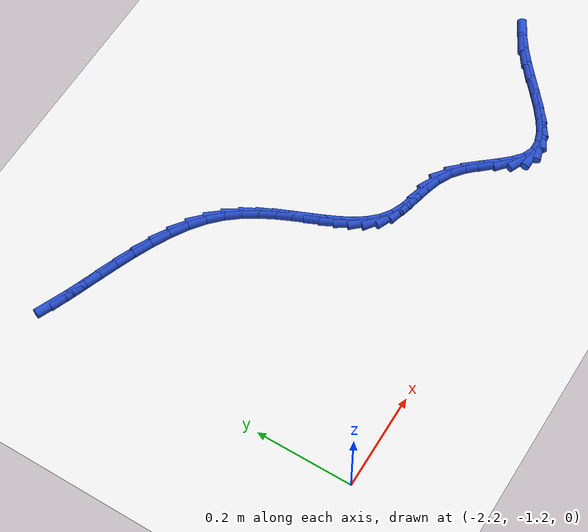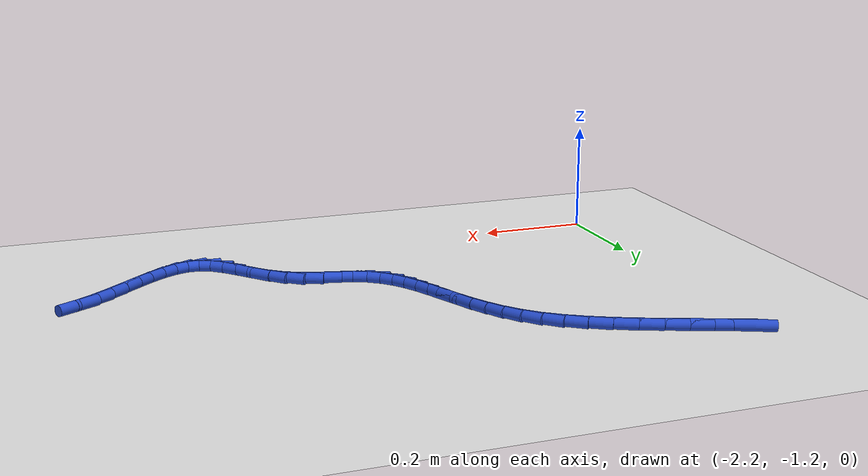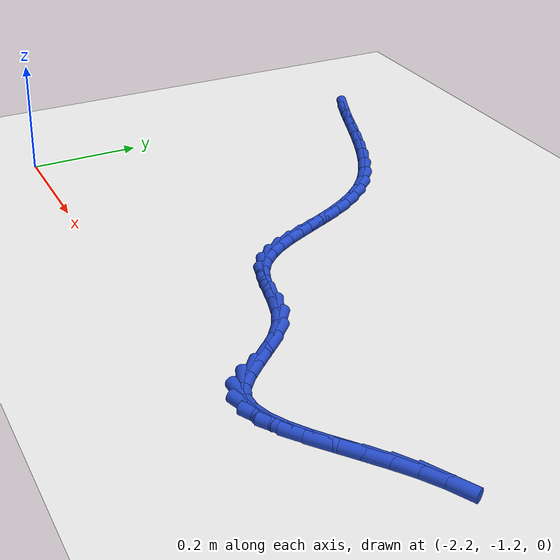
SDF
<sdf version="1.6">
 <world name="default">
  <model name="ground_plane">
   <static>1</static>
   <link name="link">
    <collision name="collision">
     <geometry><plane><normal>0 0 1</normal><size>100 100</size></plane></geometry>
     <surface><friction><ode><mu>100</mu><mu2>50</mu2></ode></friction></surface>
    </collision>
    <visual name="visual">
     <cast_shadows>0</cast_shadows>
     <geometry><plane><normal>0 0 1</normal><size>100 100</size></plane></geometry>
     <material>
      <script><uri>file://media/materials/scripts/gazebo.material</uri><name>Gazebo/WhiteGlow</name></script>
     </material>
    </visual>
   </link>
  </model>
  <model name="line">
   <link name="link_148">
    <pose>-2.1793640589691528 -0.5325400143970584 0.01 0 1.57 -0.4144865762685971</pose>
    <collision name="collision">
     <geometry><cylinder><radius>0.01</radius><length>0.08</length></cylinder></geometry>
    </collision>
    <visual name="visual">
     <material>
      <script><name>Gazebo/Blue</name><uri>file://media/materials/scripts/gazebo.material</uri></script>
     </material>
     <geometry><cylinder><radius>0.01</radius><length>0.08</length></cylinder></geometry>
    </visual>
   </link>
   <link name="link_149">
    <pose>-2.1520619958730403 -0.5445522606889542 0.01 0 1.57 -0.37567643426173364</pose>
    <collision name="collision">
     <geometry><cylinder><radius>0.01</radius><length>0.08</length></cylinder></geometry>
    </collision>
    <visual name="visual">
     <material>
      <script><name>Gazebo/Blue</name><uri>file://media/materials/scripts/gazebo.material</uri></script>
     </material>
     <geometry><cylinder><radius>0.01</radius><length>0.08</length></cylinder></geometry>
    </visual>
   </link>
   <link name="link_150">
    <pose>-2.12054145340325 -0.5569842156347203 0.01 0 1.57 -0.36205737712238323</pose>
    <collision name="collision">
     <geometry><cylinder><radius>0.01</radius><length>0.08</length></cylinder></geometry>
    </collision>
    <visual name="visual">
     <material>
      <script><name>Gazebo/Blue</name><uri>file://media/materials/scripts/gazebo.material</uri></script>
     </material>
     <geometry><cylinder><radius>0.01</radius><length>0.08</length></cylinder></geometry>
    </visual>
   </link>
   <link name="link_151">
    <pose>-2.0859157299118234 -0.5700988309756856 0.01 0 1.57 -0.3666154285389049</pose>
    <collision name="collision">
     <geometry><cylinder><radius>0.01</radius><length>0.08</length></cylinder></geometry>
    </collision>
    <visual name="visual">
     <material>
      <script><name>Gazebo/Blue</name><uri>file://media/materials/scripts/gazebo.material</uri></script>
     </material>
     <geometry><cylinder><radius>0.01</radius><length>0.08</length></cylinder></geometry>
    </visual>
   </link>
   <link name="link_152">
    <pose>-2.049298123750798 -0.5841590584531786 0.01 0 1.57 -0.3867056596858089</pose>
    <collision name="collision">
     <geometry><cylinder><radius>0.01</radius><length>0.08</length></cylinder></geometry>
    </collision>
    <visual name="visual">
     <material>
      <script><name>Gazebo/Blue</name><uri>file://media/materials/scripts/gazebo.material</uri></script>
     </material>
     <geometry><cylinder><radius>0.01</radius><length>0.08</length></cylinder></geometry>
    </visual>
   </link>
   <link name="link_153">
    <pose>-2.0118019332722157 -0.5994278498085283 0.01 0 1.57 -0.42224319597786986</pose>
    <collision name="collision">
     <geometry><cylinder><radius>0.01</radius><length>0.08</length></cylinder></geometry>
    </collision>
    <visual name="visual">
     <material>
      <script><name>Gazebo/Blue</name><uri>file://media/materials/scripts/gazebo.material</uri></script>
     </material>
     <geometry><cylinder><radius>0.01</radius><length>0.08</length></cylinder></geometry>
    </visual>
   </link>
   <link name="link_154">
    <pose>-1.9745404568281135 -0.6161681567830625 0.01 0 1.57 -0.4751206944851576</pose>
    <collision name="collision">
     <geometry><cylinder><radius>0.01</radius><length>0.08</length></cylinder></geometry>
    </collision>
    <visual name="visual">
     <material>
      <script><name>Gazebo/Blue</name><uri>file://media/materials/scripts/gazebo.material</uri></script>
     </material>
     <geometry><cylinder><radius>0.01</radius><length>0.08</length></cylinder></geometry>
    </visual>
   </link>
   <link name="link_155">
    <pose>-1.9386269927705326 -0.6346429311181108 0.01 0 1.57 -0.5491849329509276</pose>
    <collision name="collision">
     <geometry><cylinder><radius>0.01</radius><length>0.08</length></cylinder></geometry>
    </collision>
    <visual name="visual">
     <material>
      <script><name>Gazebo/Blue</name><uri>file://media/materials/scripts/gazebo.material</uri></script>
     </material>
     <geometry><cylinder><radius>0.01</radius><length>0.08</length></cylinder></geometry>
    </visual>
   </link>
   <link name="link_156">
    <pose>-1.9051748394515124 -0.6551151245550014 0.01 0 1.57 -0.6504139983077745</pose>
    <collision name="collision">
     <geometry><cylinder><radius>0.01</radius><length>0.08</length></cylinder></geometry>
    </collision>
    <visual name="visual">
     <material>
      <script><name>Gazebo/Blue</name><uri>file://media/materials/scripts/gazebo.material</uri></script>
     </material>
     <geometry><cylinder><radius>0.01</radius><length>0.08</length></cylinder></geometry>
    </visual>
   </link>
   <link name="link_157">
    <pose>-1.875297295223092 -0.677847688835063 0.01 0 1.57 -0.7788954174469972</pose>
    <collision name="collision">
     <geometry><cylinder><radius>0.01</radius><length>0.08</length></cylinder></geometry>
    </collision>
    <visual name="visual">
     <material>
      <script><name>Gazebo/Blue</name><uri>file://media/materials/scripts/gazebo.material</uri></script>
     </material>
     <geometry><cylinder><radius>0.01</radius><length>0.08</length></cylinder></geometry>
    </visual>
   </link>
   <link name="link_158">
    <pose>-1.8498363940965947 -0.7029795931634661 0.01 0 1.57 -0.9020361896211507</pose>
    <collision name="collision">
     <geometry><cylinder><radius>0.01</radius><length>0.08</length></cylinder></geometry>
    </collision>
    <visual name="visual">
     <material>
      <script><name>Gazebo/Blue</name><uri>file://media/materials/scripts/gazebo.material</uri></script>
     </material>
     <geometry><cylinder><radius>0.01</radius><length>0.08</length></cylinder></geometry>
    </visual>
   </link>
   <link name="link_159">
    <pose>-1.8284118261721594 -0.7300911291920905 0.01 0 1.57 -1.0048836079570873</pose>
    <collision name="collision">
     <geometry><cylinder><radius>0.01</radius><length>0.08</length></cylinder></geometry>
    </collision>
    <visual name="visual">
     <material>
      <script><name>Gazebo/Blue</name><uri>file://media/materials/scripts/gazebo.material</uri></script>
     </material>
     <geometry><cylinder><radius>0.01</radius><length>0.08</length></cylinder></geometry>
    </visual>
   </link>
   <link name="link_160">
    <pose>-1.8102991396083856 -0.7586052970150773 0.01 0 1.57 -1.0840982272256683</pose>
    <collision name="collision">
     <geometry><cylinder><radius>0.01</radius><length>0.08</length></cylinder></geometry>
    </collision>
    <visual name="visual">
     <material>
      <script><name>Gazebo/Blue</name><uri>file://media/materials/scripts/gazebo.material</uri></script>
     </material>
     <geometry><cylinder><radius>0.01</radius><length>0.08</length></cylinder></geometry>
    </visual>
   </link>
   <link name="link_161">
    <pose>-1.7947738634330908 -0.7879450879827601 0.01 0 1.57 -1.1382172243930269</pose>
    <collision name="collision">
     <geometry><cylinder><radius>0.01</radius><length>0.08</length></cylinder></geometry>
    </collision>
    <visual name="visual">
     <material>
      <script><name>Gazebo/Blue</name><uri>file://media/materials/scripts/gazebo.material</uri></script>
     </material>
     <geometry><cylinder><radius>0.01</radius><length>0.08</length></cylinder></geometry>
    </visual>
   </link>
   <link name="link_162">
    <pose>-1.7811115266740891 -0.8175334934454715 0.01 0 1.57 -1.1663705454068896</pose>
    <collision name="collision">
     <geometry><cylinder><radius>0.01</radius><length>0.08</length></cylinder></geometry>
    </collision>
    <visual name="visual">
     <material>
      <script><name>Gazebo/Blue</name><uri>file://media/materials/scripts/gazebo.material</uri></script>
     </material>
     <geometry><cylinder><radius>0.01</radius><length>0.08</length></cylinder></geometry>
    </visual>
   </link>
   <link name="link_163">
    <pose>-1.768587658359197 -0.8467935047535458 0.01 0 1.57 -1.167159713228206</pose>
    <collision name="collision">
     <geometry><cylinder><radius>0.01</radius><length>0.08</length></cylinder></geometry>
    </collision>
    <visual name="visual">
     <material>
      <script><name>Gazebo/Blue</name><uri>file://media/materials/scripts/gazebo.material</uri></script>
     </material>
     <geometry><cylinder><radius>0.01</radius><length>0.08</length></cylinder></geometry>
    </visual>
   </link>
   <link name="link_164">
    <pose>-1.7564777875162296 -0.8751481132573153 0.01 0 1.57 -1.1378428668057616</pose>
    <collision name="collision">
     <geometry><cylinder><radius>0.01</radius><length>0.08</length></cylinder></geometry>
    </collision>
    <visual name="visual">
     <material>
      <script><name>Gazebo/Blue</name><uri>file://media/materials/scripts/gazebo.material</uri></script>
     </material>
     <geometry><cylinder><radius>0.01</radius><length>0.08</length></cylinder></geometry>
    </visual>
   </link>
   <link name="link_165">
    <pose>-1.7440574431730032 -0.9020203103071137 0.01 0 1.57 -1.0739052201282937</pose>
    <collision name="collision">
     <geometry><cylinder><radius>0.01</radius><length>0.08</length></cylinder></geometry>
    </collision>
    <visual name="visual">
     <material>
      <script><name>Gazebo/Blue</name><uri>file://media/materials/scripts/gazebo.material</uri></script>
     </material>
     <geometry><cylinder><radius>0.01</radius><length>0.08</length></cylinder></geometry>
    </visual>
   </link>
   <link name="link_166">
    <pose>-1.730602154357333 -0.9268330872532742 0.01 0 1.57 -0.9694752348129569</pose>
    <collision name="collision">
     <geometry><cylinder><radius>0.01</radius><length>0.08</length></cylinder></geometry>
    </collision>
    <visual name="visual">
     <material>
      <script><name>Gazebo/Blue</name><uri>file://media/materials/scripts/gazebo.material</uri></script>
     </material>
     <geometry><cylinder><radius>0.01</radius><length>0.08</length></cylinder></geometry>
    </visual>
   </link>
   <link name="link_167">
    <pose>-1.715387450097034 -0.9490094354461303 0.01 0 1.57 -0.819870817228025</pose>
    <collision name="collision">
     <geometry><cylinder><radius>0.01</radius><length>0.08</length></cylinder></geometry>
    </collision>
    <visual name="visual">
     <material>
      <script><name>Gazebo/Blue</name><uri>file://media/materials/scripts/gazebo.material</uri></script>
     </material>
     <geometry><cylinder><radius>0.01</radius><length>0.08</length></cylinder></geometry>
    </visual>
   </link>
   <link name="link_168">
    <pose>-1.697688859419923 -0.9679723462360148 0.01 0 1.57 -0.6277760330394415</pose>
    <collision name="collision">
     <geometry><cylinder><radius>0.01</radius><length>0.08</length></cylinder></geometry>
    </collision>
    <visual name="visual">
     <material>
      <script><name>Gazebo/Blue</name><uri>file://media/materials/scripts/gazebo.material</uri></script>
     </material>
     <geometry><cylinder><radius>0.01</radius><length>0.08</length></cylinder></geometry>
    </visual>
   </link>
   <link name="link_169">
    <pose>-1.676781911353815 -0.9831448109732617 0.01 0 1.57 -0.4137884007350685</pose>
    <collision name="collision">
     <geometry><cylinder><radius>0.01</radius><length>0.08</length></cylinder></geometry>
    </collision>
    <visual name="visual">
     <material>
      <script><name>Gazebo/Blue</name><uri>file://media/materials/scripts/gazebo.material</uri></script>
     </material>
     <geometry><cylinder><radius>0.01</radius><length>0.08</length></cylinder></geometry>
    </visual>
   </link>
   <link name="link_170">
    <pose>-1.6520006665267981 -0.9940273137479101 0.01 0 1.57 -0.26703504556552277</pose>
    <collision name="collision">
     <geometry><cylinder><radius>0.01</radius><length>0.08</length></cylinder></geometry>
    </collision>
    <visual name="visual">
     <material>
      <script><name>Gazebo/Blue</name><uri>file://media/materials/scripts/gazebo.material</uri></script>
     </material>
     <geometry><cylinder><radius>0.01</radius><length>0.08</length></cylinder></geometry>
    </visual>
   </link>
   <link name="link_171">
    <pose>-1.6238863187022328 -1.0017185190073918 0.01 0 1.57 -0.23413051533846616</pose>
    <collision name="collision">
     <geometry><cylinder><radius>0.01</radius><length>0.08</length></cylinder></geometry>
    </collision>
    <visual name="visual">
     <material>
      <script><name>Gazebo/Blue</name><uri>file://media/materials/scripts/gazebo.material</uri></script>
     </material>
     <geometry><cylinder><radius>0.01</radius><length>0.08</length></cylinder></geometry>
    </visual>
   </link>
   <link name="link_172">
    <pose>-1.5941146320036035 -1.0088192022841957 0.01 0 1.57 -0.2993560280002451</pose>
    <collision name="collision">
     <geometry><cylinder><radius>0.01</radius><length>0.08</length></cylinder></geometry>
    </collision>
    <visual name="visual">
     <material>
      <script><name>Gazebo/Blue</name><uri>file://media/materials/scripts/gazebo.material</uri></script>
     </material>
     <geometry><cylinder><radius>0.01</radius><length>0.08</length></cylinder></geometry>
    </visual>
   </link>
   <link name="link_173">
    <pose>-1.5644053721127558 -1.0179883948443436 0.01 0 1.57 -0.46172240888423133</pose>
    <collision name="collision">
     <geometry><cylinder><radius>0.01</radius><length>0.08</length></cylinder></geometry>
    </collision>
    <visual name="visual">
     <material>
      <script><name>Gazebo/Blue</name><uri>file://media/materials/scripts/gazebo.material</uri></script>
     </material>
     <geometry><cylinder><radius>0.01</radius><length>0.08</length></cylinder></geometry>
    </visual>
   </link>
   <link name="link_174">
    <pose>-1.5364781787318855 -1.0318848492880168 0.01 0 1.57 -0.6788608159491873</pose>
    <collision name="collision">
     <geometry><cylinder><radius>0.01</radius><length>0.08</length></cylinder></geometry>
    </collision>
    <visual name="visual">
     <material>
      <script><name>Gazebo/Blue</name><uri>file://media/materials/scripts/gazebo.material</uri></script>
     </material>
     <geometry><cylinder><radius>0.01</radius><length>0.08</length></cylinder></geometry>
    </visual>
   </link>
   <link name="link_175">
    <pose>-1.5115304591574388 -1.0520121448918702 0.01 0 1.57 -0.8194855992472322</pose>
    <collision name="collision">
     <geometry><cylinder><radius>0.01</radius><length>0.08</length></cylinder></geometry>
    </collision>
    <visual name="visual">
     <material>
      <script><name>Gazebo/Blue</name><uri>file://media/materials/scripts/gazebo.material</uri></script>
     </material>
     <geometry><cylinder><radius>0.01</radius><length>0.08</length></cylinder></geometry>
    </visual>
   </link>
   <link name="link_176">
    <pose>-1.4890462632078827 -1.076083929801424 0.01 0 1.57 -0.8738727297638332</pose>
    <collision name="collision">
     <geometry><cylinder><radius>0.01</radius><length>0.08</length></cylinder></geometry>
    </collision>
    <visual name="visual">
     <material>
      <script><name>Gazebo/Blue</name><uri>file://media/materials/scripts/gazebo.material</uri></script>
     </material>
     <geometry><cylinder><radius>0.01</radius><length>0.08</length></cylinder></geometry>
    </visual>
   </link>
   <link name="link_177">
    <pose>-1.4681588015503124 -1.1010377991558205 0.01 0 1.57 -0.8462585563654265</pose>
    <collision name="collision">
     <geometry><cylinder><radius>0.01</radius><length>0.08</length></cylinder></geometry>
    </collision>
    <visual name="visual">
     <material>
      <script><name>Gazebo/Blue</name><uri>file://media/materials/scripts/gazebo.material</uri></script>
     </material>
     <geometry><cylinder><radius>0.01</radius><length>0.08</length></cylinder></geometry>
    </visual>
   </link>
   <link name="link_178">
    <pose>-1.4480012848518256 -1.1238113480942002 0.01 0 1.57 -0.7124669674881855</pose>
    <collision name="collision">
     <geometry><cylinder><radius>0.01</radius><length>0.08</length></cylinder></geometry>
    </collision>
    <visual name="visual">
     <material>
      <script><name>Gazebo/Blue</name><uri>file://media/materials/scripts/gazebo.material</uri></script>
     </material>
     <geometry><cylinder><radius>0.01</radius><length>0.08</length></cylinder></geometry>
    </visual>
   </link>
   <link name="link_179">
    <pose>-1.427706923779519 -1.141342171755704 0.01 0 1.57 -0.41135610201849643</pose>
    <collision name="collision">
     <geometry><cylinder><radius>0.01</radius><length>0.08</length></cylinder></geometry>
    </collision>
    <visual name="visual">
     <material>
      <script><name>Gazebo/Blue</name><uri>file://media/materials/scripts/gazebo.material</uri></script>
     </material>
     <geometry><cylinder><radius>0.01</radius><length>0.08</length></cylinder></geometry>
    </visual>
   </link>
   <link name="link_180">
    <pose>-1.4064222637481822 -1.1506274861799233 0.01 0 1.57 -0.0014499979643936257</pose>
    <collision name="collision">
     <geometry><cylinder><radius>0.01</radius><length>0.08</length></cylinder></geometry>
    </collision>
    <visual name="visual">
     <material>
      <script><name>Gazebo/Blue</name><uri>file://media/materials/scripts/gazebo.material</uri></script>
     </material>
     <geometry><cylinder><radius>0.01</radius><length>0.08</length></cylinder></geometry>
    </visual>
   </link>
   <link name="link_181">
    <pose>-1.3837402438320086 -1.1506603750856796 0.01 0 1.57 0.3151313856266616</pose>
    <collision name="collision">
     <geometry><cylinder><radius>0.01</radius><length>0.08</length></cylinder></geometry>
    </collision>
    <visual name="visual">
     <material>
      <script><name>Gazebo/Blue</name><uri>file://media/materials/scripts/gazebo.material</uri></script>
     </material>
     <geometry><cylinder><radius>0.01</radius><length>0.08</length></cylinder></geometry>
    </visual>
   </link>
   <link name="link_182">
    <pose>-1.3597951656106344 -1.142854404437891 0.01 0 1.57 0.5123896460178208</pose>
    <collision name="collision">
     <geometry><cylinder><radius>0.01</radius><length>0.08</length></cylinder></geometry>
    </collision>
    <visual name="visual">
     <material>
      <script><name>Gazebo/Blue</name><uri>file://media/materials/scripts/gazebo.material</uri></script>
     </material>
     <geometry><cylinder><radius>0.01</radius><length>0.08</length></cylinder></geometry>
    </visual>
   </link>
   <link name="link_183">
    <pose>-1.3347538809826351 -1.128768675712899 0.01 0 1.57 0.6267444277498889</pose>
    <collision name="collision">
     <geometry><cylinder><radius>0.01</radius><length>0.08</length></cylinder></geometry>
    </collision>
    <visual name="visual">
     <material>
      <script><name>Gazebo/Blue</name><uri>file://media/materials/scripts/gazebo.material</uri></script>
     </material>
     <geometry><cylinder><radius>0.01</radius><length>0.08</length></cylinder></geometry>
    </visual>
   </link>
   <link name="link_184">
    <pose>-1.3087832418465837 -1.1099622903870436 0.01 0 1.57 0.6878627333561039</pose>
    <collision name="collision">
     <geometry><cylinder><radius>0.01</radius><length>0.08</length></cylinder></geometry>
    </collision>
    <visual name="visual">
     <material>
      <script><name>Gazebo/Blue</name><uri>file://media/materials/scripts/gazebo.material</uri></script>
     </material>
     <geometry><cylinder><radius>0.01</radius><length>0.08</length></cylinder></geometry>
    </visual>
   </link>
   <link name="link_185">
    <pose>-1.2820501001010562 -1.0879943499366667 0.01 0 1.57 0.7116918791366031</pose>
    <collision name="collision">
     <geometry><cylinder><radius>0.01</radius><length>0.08</length></cylinder></geometry>
    </collision>
    <visual name="visual">
     <material>
      <script><name>Gazebo/Blue</name><uri>file://media/materials/scripts/gazebo.material</uri></script>
     </material>
     <geometry><cylinder><radius>0.01</radius><length>0.08</length></cylinder></geometry>
    </visual>
   </link>
   <link name="link_186">
    <pose>-1.2547213076446262 -1.0644239558381083 0.01 0 1.57 0.7049079047316948</pose>
    <collision name="collision">
     <geometry><cylinder><radius>0.01</radius><length>0.08</length></cylinder></geometry>
    </collision>
    <visual name="visual">
     <material>
      <script><name>Gazebo/Blue</name><uri>file://media/materials/scripts/gazebo.material</uri></script>
     </material>
     <geometry><cylinder><radius>0.01</radius><length>0.08</length></cylinder></geometry>
    </visual>
   </link>
   <link name="link_187">
    <pose>-1.2269637163758684 -1.0408102095677092 0.01 0 1.57 0.6677903336285783</pose>
    <collision name="collision">
     <geometry><cylinder><radius>0.01</radius><length>0.08</length></cylinder></geometry>
    </collision>
    <visual name="visual">
     <material>
      <script><name>Gazebo/Blue</name><uri>file://media/materials/scripts/gazebo.material</uri></script>
     </material>
     <geometry><cylinder><radius>0.01</radius><length>0.08</length></cylinder></geometry>
    </visual>
   </link>
   <link name="link_188">
    <pose>-1.198944178193357 -1.0187122126018104 0.01 0 1.57 0.5977852269783264</pose>
    <collision name="collision">
     <geometry><cylinder><radius>0.01</radius><length>0.08</length></cylinder></geometry>
    </collision>
    <visual name="visual">
     <material>
      <script><name>Gazebo/Blue</name><uri>file://media/materials/scripts/gazebo.material</uri></script>
     </material>
     <geometry><cylinder><radius>0.01</radius><length>0.08</length></cylinder></geometry>
    </visual>
   </link>
   <link name="link_189">
    <pose>-1.1708129105586178 -0.9995579042259489 0.01 0 1.57 0.5100484474709734</pose>
    <collision name="collision">
     <geometry><cylinder><radius>0.01</radius><length>0.08</length></cylinder></geometry>
    </collision>
    <visual name="visual">
     <material>
      <script><name>Gazebo/Blue</name><uri>file://media/materials/scripts/gazebo.material</uri></script>
     </material>
     <geometry><cylinder><radius>0.01</radius><length>0.08</length></cylinder></geometry>
    </visual>
   </link>
  </model>
 </world>
</sdf>
